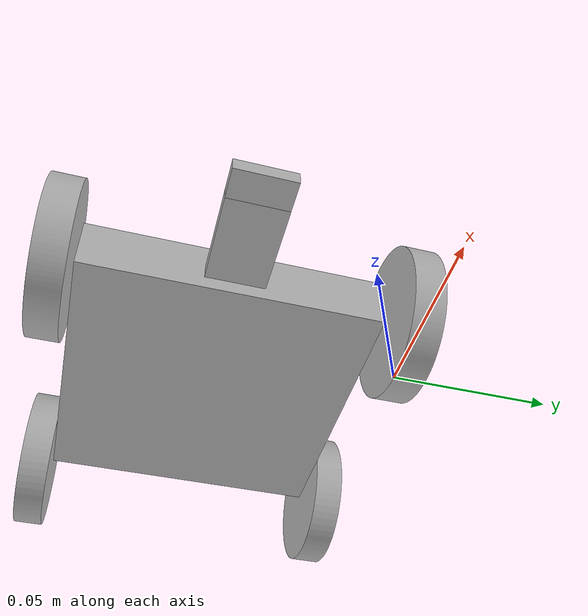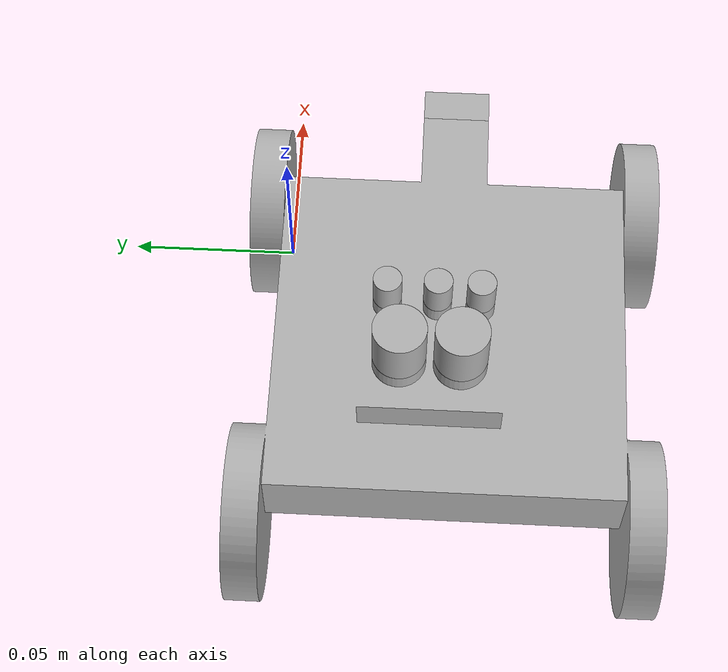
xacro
<?xml version="1.0" ?>
<robot name="s1100853" xmlns:xacro="http://www.ros.org/wiki/xacro">

<xacro:include filename="$(find s1100853_description)/urdf/materials.xacro" />
<xacro:include filename="$(find s1100853_description)/urdf/s1100853.trans" />
<xacro:include filename="$(find s1100853_description)/urdf/s1100853.gazebo" />
<link name="base_link">
  <inertial>
    <origin xyz="-0.05749742708993421 -0.04964248048669571 0.034603231380862125" rpy="0 0 0"/>
    <mass value="0.7041357979408202"/>
    <inertia ixx="0.000838" iyy="0.000797" izz="0.001518" ixy="1e-06" iyz="-4e-06" ixz="-4.1e-05"/>
  </inertial>
  <visual>
    <origin xyz="0 0 0" rpy="0 0 0"/>
    <geometry>
      <mesh filename="package://s1100853_description/meshes/base_link.stl" scale="0.001 0.001 0.001"/>
    </geometry>
    <material name="silver"/>
  </visual>
  <collision>
    <origin xyz="0 0 0" rpy="0 0 0"/>
    <geometry>
      <mesh filename="package://s1100853_description/meshes/base_link.stl" scale="0.001 0.001 0.001"/>
    </geometry>
  </collision>
</link>

<link name="left_wheel_1">
  <inertial>
    <origin xyz="-3.618764437576268e-18 0.005 -6.938893903907228e-18" rpy="0 0 0"/>
    <mass value="0.027979809571034093"/>
    <inertia ixx="5e-06" iyy="9e-06" izz="5e-06" ixy="0.0" iyz="0.0" ixz="-0.0"/>
  </inertial>
  <visual>
    <origin xyz="-0.0 -0.0 -0.025" rpy="0 0 0"/>
    <geometry>
      <mesh filename="package://s1100853_description/meshes/left_wheel_1.stl" scale="0.001 0.001 0.001"/>
    </geometry>
    <material name="silver"/>
  </visual>
  <collision>
    <origin xyz="-0.0 -0.0 -0.025" rpy="0 0 0"/>
    <geometry>
      <mesh filename="package://s1100853_description/meshes/left_wheel_1.stl" scale="0.001 0.001 0.001"/>
    </geometry>
  </collision>
</link>

<link name="right_wheel_1">
  <inertial>
    <origin xyz="-3.618764437576268e-18 -0.0049999999999999906 -6.938893903907228e-18" rpy="0 0 0"/>
    <mass value="0.027979809571034093"/>
    <inertia ixx="5e-06" iyy="9e-06" izz="5e-06" ixy="-0.0" iyz="0.0" ixz="-0.0"/>
  </inertial>
  <visual>
    <origin xyz="-0.0 0.1 -0.025" rpy="0 0 0"/>
    <geometry>
      <mesh filename="package://s1100853_description/meshes/right_wheel_1.stl" scale="0.001 0.001 0.001"/>
    </geometry>
    <material name="silver"/>
  </visual>
  <collision>
    <origin xyz="-0.0 0.1 -0.025" rpy="0 0 0"/>
    <geometry>
      <mesh filename="package://s1100853_description/meshes/right_wheel_1.stl" scale="0.001 0.001 0.001"/>
    </geometry>
  </collision>
</link>

<link name="Bumper_1">
  <inertial>
    <origin xyz="0.0050000000000000044 0.0 0.0" rpy="0 0 0"/>
    <mass value="0.00785"/>
    <inertia ixx="0.0" iyy="0.0" izz="0.0" ixy="0.0" iyz="0.0" ixz="0.0"/>
  </inertial>
  <visual>
    <origin xyz="-0.03 0.05 -0.0325" rpy="0 0 0"/>
    <geometry>
      <mesh filename="package://s1100853_description/meshes/Bumper_1.stl" scale="0.001 0.001 0.001"/>
    </geometry>
    <material name="silver"/>
  </visual>
  <collision>
    <origin xyz="-0.03 0.05 -0.0325" rpy="0 0 0"/>
    <geometry>
      <mesh filename="package://s1100853_description/meshes/Bumper_1.stl" scale="0.001 0.001 0.001"/>
    </geometry>
  </collision>
</link>

<link name="Lidar_1">
  <inertial>
    <origin xyz="-7.144191904728814e-10 -8.642673382519561e-10 0.0050000000000000044" rpy="0 0 0"/>
    <mass value="0.0006635043684381371"/>
    <inertia ixx="0.0" iyy="0.0" izz="0.0" ixy="-0.0" iyz="0.0" ixz="-0.0"/>
  </inertial>
  <visual>
    <origin xyz="0.048 0.058 -0.06" rpy="0 0 0"/>
    <geometry>
      <mesh filename="package://s1100853_description/meshes/Lidar_1.stl" scale="0.001 0.001 0.001"/>
    </geometry>
    <material name="silver"/>
  </visual>
  <collision>
    <origin xyz="0.048 0.058 -0.06" rpy="0 0 0"/>
    <geometry>
      <mesh filename="package://s1100853_description/meshes/Lidar_1.stl" scale="0.001 0.001 0.001"/>
    </geometry>
  </collision>
</link>

<link name="Depth_Camera_1">
  <inertial>
    <origin xyz="-7.144191904728814e-10 -6.854534093103659e-10 0.0050000000000000044" rpy="0 0 0"/>
    <mass value="0.0006936636579125978"/>
    <inertia ixx="0.0" iyy="0.0" izz="0.0" ixy="-0.0" iyz="0.0" ixz="0.0"/>
  </inertial>
  <visual>
    <origin xyz="0.048 0.046 -0.06" rpy="0 0 0"/>
    <geometry>
      <mesh filename="package://s1100853_description/meshes/Depth_Camera_1.stl" scale="0.001 0.001 0.001"/>
    </geometry>
    <material name="silver"/>
  </visual>
  <collision>
    <origin xyz="0.048 0.046 -0.06" rpy="0 0 0"/>
    <geometry>
      <mesh filename="package://s1100853_description/meshes/Depth_Camera_1.stl" scale="0.001 0.001 0.001"/>
    </geometry>
  </collision>
</link>

<link name="Camera_1">
  <inertial>
    <origin xyz="-7.144191696561997e-10 -4.768371392183113e-10 0.004999999999999977" rpy="0 0 0"/>
    <mass value="0.0006936636579125949"/>
    <inertia ixx="0.0" iyy="0.0" izz="0.0" ixy="-0.0" iyz="0.0" ixz="0.0"/>
  </inertial>
  <visual>
    <origin xyz="0.048 0.032 -0.06" rpy="0 0 0"/>
    <geometry>
      <mesh filename="package://s1100853_description/meshes/Camera_1.stl" scale="0.001 0.001 0.001"/>
    </geometry>
    <material name="silver"/>
  </visual>
  <collision>
    <origin xyz="0.048 0.032 -0.06" rpy="0 0 0"/>
    <geometry>
      <mesh filename="package://s1100853_description/meshes/Camera_1.stl" scale="0.001 0.001 0.001"/>
    </geometry>
  </collision>
</link>

<link name="IMU_1">
  <inertial>
    <origin xyz="-9.826923857980674e-10 -7.897615270091585e-10 0.007500000000000076" rpy="0 0 0"/>
    <mass value="0.0014419910279976841"/>
    <inertia ixx="0.0" iyy="0.0" izz="0.0" ixy="0.0" iyz="0.0" ixz="0.0"/>
  </inertial>
  <visual>
    <origin xyz="0.066 0.053 -0.06" rpy="0 0 0"/>
    <geometry>
      <mesh filename="package://s1100853_description/meshes/IMU_1.stl" scale="0.001 0.001 0.001"/>
    </geometry>
    <material name="silver"/>
  </visual>
  <collision>
    <origin xyz="0.066 0.053 -0.06" rpy="0 0 0"/>
    <geometry>
      <mesh filename="package://s1100853_description/meshes/IMU_1.stl" scale="0.001 0.001 0.001"/>
    </geometry>
  </collision>
</link>

<link name="GPS_1">
  <inertial>
    <origin xyz="-9.826923857980674e-10 -5.364418007025584e-10 0.007500000000000076" rpy="0 0 0"/>
    <mass value="0.0018555031610264317"/>
    <inertia ixx="0.0" iyy="0.0" izz="0.0" ixy="-0.0" iyz="0.0" ixz="0.0"/>
  </inertial>
  <visual>
    <origin xyz="0.066 0.036 -0.06" rpy="0 0 0"/>
    <geometry>
      <mesh filename="package://s1100853_description/meshes/GPS_1.stl" scale="0.001 0.001 0.001"/>
    </geometry>
    <material name="silver"/>
  </visual>
  <collision>
    <origin xyz="0.066 0.036 -0.06" rpy="0 0 0"/>
    <geometry>
      <mesh filename="package://s1100853_description/meshes/GPS_1.stl" scale="0.001 0.001 0.001"/>
    </geometry>
  </collision>
</link>

<joint name="Revolute 2" type="continuous">
  <origin xyz="0.0 0.0 0.025" rpy="0 0 0"/>
  <parent link="base_link"/>
  <child link="left_wheel_1"/>
  <axis xyz="0.0 -1.0 0.0"/>
</joint>

<joint name="Revolute 1" type="continuous">
  <origin xyz="0.0 -0.1 0.025" rpy="0 0 0"/>
  <parent link="base_link"/>
  <child link="right_wheel_1"/>
  <axis xyz="0.0 1.0 0.0"/>
</joint>

<joint name="Rigid 3" type="fixed">
  <origin xyz="0.03 -0.05 0.0325" rpy="0 0 0"/>
  <parent link="base_link"/>
  <child link="Bumper_1"/>
</joint>

<joint name="Rigid 4" type="fixed">
  <origin xyz="-0.048 -0.058 0.06" rpy="0 0 0"/>
  <parent link="base_link"/>
  <child link="Lidar_1"/>
</joint>

<joint name="Rigid 5" type="fixed">
  <origin xyz="-0.048 -0.046 0.06" rpy="0 0 0"/>
  <parent link="base_link"/>
  <child link="Depth_Camera_1"/>
</joint>

<joint name="Rigid 6" type="fixed">
  <origin xyz="-0.048 -0.032 0.06" rpy="0 0 0"/>
  <parent link="base_link"/>
  <child link="Camera_1"/>
</joint>

<joint name="Rigid 7" type="fixed">
  <origin xyz="-0.066 -0.053 0.06" rpy="0 0 0"/>
  <parent link="base_link"/>
  <child link="IMU_1"/>
</joint>

<joint name="Rigid 8" type="fixed">
  <origin xyz="-0.066 -0.036 0.06" rpy="0 0 0"/>
  <parent link="base_link"/>
  <child link="GPS_1"/>
</joint>

</robot>

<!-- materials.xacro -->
<robot name="s1100853" xmlns:xacro="http://www.ros.org/wiki/xacro" >

<material name="silver">
  <color rgba="0.700 0.700 0.700 1.000"/>
</material>

</robot>

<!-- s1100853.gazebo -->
<robot name="s1100853"
  xmlns:xacro="http://www.ros.org/wiki/xacro">

  <xacro:property name="body_color" value="Gazebo/Silver" />

  <gazebo>
    <plugin name="control" filename="libgazebo_ros_control.so"/>
  </gazebo>
  <gazebo reference="base_link">
    <material>${body_color}</material>
    <mu1>0.2</mu1>
    <mu2>0.2</mu2>
    <selfCollide>true</selfCollide>
    <gravity>true</gravity>
  </gazebo>

  <gazebo reference="left_wheel_1">
    <material>${body_color}</material>
    <mu1>0.2</mu1>
    <mu2>0.2</mu2>
    <selfCollide>true</selfCollide>
  </gazebo>

  <gazebo reference="right_wheel_1">
    <material>${body_color}</material>
    <mu1>0.2</mu1>
    <mu2>0.2</mu2>
    <selfCollide>true</selfCollide>
  </gazebo>

  <gazebo reference="Bumper_1">
    <material>${body_color}</material>
    <mu1>0.2</mu1>
    <mu2>0.2</mu2>
    <selfCollide>true</selfCollide>
    <sensor name="Bumper_sensor" type="contact">
      <always_on>true</always_on>
      <update_rate>50</update_rate>
      <contact>
        <collision>Bumper_1_collision</collision>
      </contact>
      <plugin name="gazebo_ros_bumper" filename="libgazebo_ros_bumper.so">
        <bumperTopicName>/bumper_states</bumperTopicName>
        <frameName>Bumper_1</frameName>
      </plugin>
    </sensor>
  </gazebo>

  <gazebo reference="Lidar_1">
    <material>${body_color}</material>
    <mu1>0.2</mu1>
    <mu2>0.2</mu2>
    <selfCollide>true</selfCollide>
    <sensor name="Lidar_sensor" type="ray">
      <pose>0 0 0 0 0 0</pose>
      <update_rate>20</update_rate>
      <ray>
        <scan>
          <horizontal>
            <samples>360</samples>
            <resolution>1</resolution>
            <min_angle>-1.5708</min_angle>
            <max_angle>1.5708</max_angle>
          </horizontal>
        </scan>
        <range>
          <min>0.12</min>
          <max>10.0</max>
          <resolution>0.01</resolution>
        </range>
      </ray>

      <plugin name="gazebo_ros_laser" filename="libgazebo_ros_laser.so">
        <topicName>/scan</topicName>
        <frameName>Lidar_1</frameName>
      </plugin>
    </sensor>
  </gazebo>

  <gazebo reference="Depth_Camera_1">
    <material>${body_color}</material>
    <mu1>0.2</mu1>
    <mu2>0.2</mu2>
    <selfCollide>true</selfCollide>
    <sensor name="Depth_Camera_sensor" type="depth">
      <update_rate>20.0</update_rate>
      <camera>
        <horizontal_fov>1.047</horizontal_fov>
        <image>
          <width>640</width>
          <height>480</height>
          <format>R8G8B8</format>
        </image>
        <clip>
          <near>0.1</near>
          <far>100</far>
        </clip>
      </camera>
      <plugin name="gazebo_ros_openni_kinect" filename="libgazebo_ros_openni_kinect.so">
        <imageTopicName>/depth_camera/color/image_raw</imageTopicName>
        <cameraInfoTopicName>/depth_camera/color/camera_info</cameraInfoTopicName>
        <depthImageTopicName>/depth_camera/depth/image_raw</depthImageTopicName>
        <depthImageCameraInfoTopicName>/depth_camera/depth/camera_info</depthImageCameraInfoTopicName>
        <pointCloudTopicName>/depth_camera/points</pointCloudTopicName>
        <frameName>Depth_Camera_1</frameName>
        <pointCloudCutoff>0.1</pointCloudCutoff>
      </plugin>
    </sensor>
  </gazebo>

  <gazebo reference="Camera_1">
    <material>${body_color}</material>
    <mu1>0.2</mu1>
    <mu2>0.2</mu2>
    <selfCollide>true</selfCollide>
    <sensor name="Camera_sensor" type="camera">
      <pose>0 0 0 0 0 0</pose>
      <update_rate>30</update_rate>
      <camera>
        <horizontal_fov>1.047</horizontal_fov>
        <image>
          <width>640</width>
          <height>480</height>
          <format>R8G8B8</format>
        </image>
        <clip>
          <near>0.1</near>
          <far>100</far>
        </clip>
      </camera>
      <plugin name="gazebo_ros_camera" filename="libgazebo_ros_camera.so">
        <imageTopicName>/camera/image_raw</imageTopicName>
        <cameraInfoTopicName>/camera/camera_info</cameraInfoTopicName>
        <frameName>Camera_1</frameName>
      </plugin>
    </sensor>
  </gazebo>

  <gazebo reference="IMU_1">
    <material>${body_color}</material>
    <mu1>0.2</mu1>
    <mu2>0.2</mu2>
    <selfCollide>true</selfCollide>
    <sensor name="IMU_sensor" type="imu">
      <always_on>true</always_on>
      <update_rate>100</update_rate>
      <plugin name="gazebo_ros_imu_sensor" filename="libgazebo_ros_imu_sensor.so">
        <topicName>/imu</topicName>
        <bodyName>IMU_1</bodyName>
        <updateRateHZ>100.0</updateRateHZ>
        <gaussianNoise>0.0</gaussianNoise>
        <xyzOffset>0 0 0</xyzOffset>
        <rpyOffset>0 0 0</rpyOffset>
        <frameName>IMU_1</frameName>
        <initialOrientationAsReference>false</initialOrientationAsReference>
      </plugin>
    </sensor>
  </gazebo>

  <gazebo reference="GPS_1">
    <material>${body_color}</material>
    <mu1>0.2</mu1>
    <mu2>0.2</mu2>
    <selfCollide>true</selfCollide>
    <sensor name="GPS_sensor" type="gps">
      <update_rate>10</update_rate>
      <plugin name="gazebo_ros_gps_sensor" filename="libgazebo_ros_gps_sensor.so">
        <topicName>/gps/fix</topicName>
        <frameName>GPS_1</frameName>
      </plugin>
    </sensor>
  </gazebo>

  <gazebo>
    <plugin name="differential_drive_controller" filename="libgazebo_ros_diff_drive.so">
      <updateRate>100</updateRate>
      <leftJoint>Revolute 2</leftJoint>
      <rightJoint>Revolute 1</rightJoint>
      <wheelSeparation>0.2</wheelSeparation>
      <wheelDiameter>0.1</wheelDiameter>
      <wheelAcceleration>1.0</wheelAcceleration>
      <wheelTorque>50</wheelTorque>
      <commandTopic>cmd_vel</commandTopic>
      <odometryTopic>odom</odometryTopic>
      <odometryFrame>odom</odometryFrame>
      <robotBaseFrame>base_link</robotBaseFrame>
      <odometrySource>1</odometrySource>
      <publishWheelTF>true</publishWheelTF>
      <publishOdom>true</publishOdom>
      <publishWheelJointState>true</publishWheelJointState>
      <legacyMode>false</legacyMode>
    </plugin>
  </gazebo>

</robot>
